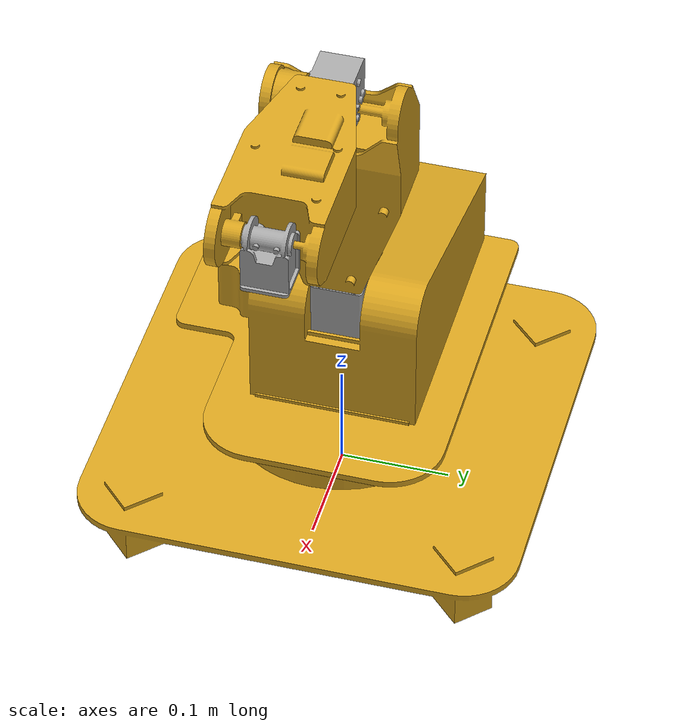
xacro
<?xml version="1.0" ?>

<robot name="open_arms" xmlns:xacro="http://www.ros.org/wiki/xacro">
    <xacro:property name="robot_id" value="open_arms" />
    <xacro:property name="description_pkg" value="open_arms_description" />

    <!-- color definition -->
    <material name="laser_cut">
        <color rgba="0.855 0.647 0.125 1" />
    </material>
    <material name="motor">
        <color rgba="0.663 0.663 0.663 1.0" />
    </material>

    <!-- links -->
    <link name="${robot_id}_base">
        <visual>
            <origin xyz="0 0 0" rpy="0 0 0" />
            <geometry>
                <mesh filename="package://${description_pkg}/meshes/visual/base.STL" />
            </geometry>
            <material name="laser_cut" />
        </visual>
        <collision>
            <origin xyz="0 0 0" rpy="0 0 0" />
            <geometry>
                <mesh filename="package://${description_pkg}/meshes/collision/base.STL" />
            </geometry>
        </collision>
    </link>
    <link name="${robot_id}_link1">
        <visual>
            <origin xyz="0 0 0" rpy="0 0 0" />
            <geometry>
                <mesh filename="package://${description_pkg}/meshes/visual/link_1.STL" />
            </geometry>
            <material name="laser_cut" />
        </visual>
        <collision>
            <origin xyz="0 0 0" rpy="0 0 0" />
            <geometry>
                <mesh filename="package://${description_pkg}/meshes/collision/link_1.STL" />
            </geometry>
        </collision>
    </link>
    <link name="${robot_id}_link2">
        <visual>
            <origin xyz="0 0 0" rpy="0 0 0" />
            <geometry>
                <mesh filename="package://${description_pkg}/meshes/visual/link_2.STL" />
            </geometry>
            <material name="motor" />
        </visual>
        <collision>
            <origin xyz="0 0 0" rpy="0 0 0" />
            <geometry>
                <mesh filename="package://${description_pkg}/meshes/collision/link_2.STL" />
            </geometry>
        </collision>
    </link>
    <link name="${robot_id}_link3">
        <visual>
            <origin xyz="0 0 0" rpy="0 0 0" />
            <geometry>
                <mesh filename="package://${description_pkg}/meshes/visual/link_3.STL" />
            </geometry>
            <material name="laser_cut" />
        </visual>
        <collision>
            <origin xyz="0 0 0" rpy="0 0 0" />
            <geometry>
                <mesh filename="package://${description_pkg}/meshes/collision/link_3.STL" />
            </geometry>
        </collision>
    </link>
    <link name="${robot_id}_link4">
        <visual>
            <origin xyz="0 0 0" rpy="0 0 0" />
            <geometry>
                <mesh filename="package://${description_pkg}/meshes/visual/link_4.STL" />
            </geometry>
            <material name="motor" />
        </visual>
        <collision>
            <origin xyz="0 0 0" rpy="0 0 0" />
            <geometry>
                <mesh filename="package://${description_pkg}/meshes/collision/link_4.STL" />
            </geometry>
        </collision>
    </link>
    <link name="${robot_id}_link5">
        <visual>
            <origin xyz="0 0 0" rpy="0 0 0" />
            <geometry>
                <mesh filename="package://${description_pkg}/meshes/visual/link_5.STL" />
            </geometry>
            <material name="laser_cut" />
        </visual>
        <collision>
            <origin xyz="0 0 0" rpy="0 0 0" />
            <geometry>
                <mesh filename="package://${description_pkg}/meshes/collision/link_5.STL" />
            </geometry>
        </collision>
    </link>
    <link name="${robot_id}_link6">
        <visual>
            <origin xyz="0 0 0" rpy="0 0 0" />
            <geometry>
                <mesh filename="package://${description_pkg}/meshes/visual/link_6.STL" />
            </geometry>
            <material name="motor" />
        </visual>
        <collision>
            <origin xyz="0 0 0" rpy="0 0 0" />
            <geometry>
                <mesh filename="package://${description_pkg}/meshes/collision/link_6.STL" />
            </geometry>
        </collision>
    </link>
    <link name="${robot_id}_link7">
        <visual>
            <origin xyz="0 0 0" rpy="0 0 0" />
            <geometry>
                <mesh filename="package://${description_pkg}/meshes/visual/link_7.STL" />
            </geometry>
            <material name="laser_cut" />
        </visual>
        <collision>
            <origin xyz="0 0 0" rpy="0 0 0" />
            <geometry>
                <mesh filename="package://${description_pkg}/meshes/collision/link_7.STL" />
            </geometry>
        </collision>
    </link>

    <!-- joints -->
    <joint name="${robot_id}_joint1" type="revolute">
        <origin rpy="0 0 0" xyz="0 0 0.053975" />
        <parent link="${robot_id}_base" />
        <child link="${robot_id}_link1" />
        <axis xyz="0 0 1" />
        <limit effort="30" lower="-1.5708" upper="1.5708" velocity="0.2094" />
    </joint>
    <joint name="${robot_id}_joint2" type="revolute">
        <origin rpy="1.5708 0 0" xyz="0 0 0.13705" />
        <parent link="${robot_id}_link1" />
        <child link="${robot_id}_link2" />
        <axis xyz="0 0 1" />
        <limit effort="30" lower="-1.5358" upper="0" velocity="0.2094" />
    </joint>
    <joint name="${robot_id}_joint3" type="revolute">
        <origin rpy="-1.5708 0 0" xyz="0 0 0" />
        <parent link="${robot_id}_link2" />
        <child link="${robot_id}_link3" />
        <axis xyz="0 0 1" />
        <limit effort="30" lower="-3.1415" upper="3.1415" velocity="0.2094" />
    </joint>
    <joint name="${robot_id}_joint4" type="revolute">
        <origin rpy="1.5708 0 0" xyz="0.020 0 0.240" />
        <parent link="${robot_id}_link3" />
        <child link="${robot_id}_link4" />
        <axis xyz="0 0 1" />
        <limit effort="30" lower="-0.6981" upper="1.8325" velocity="0.2094" />
    </joint>
    <joint name="${robot_id}_joint5" type="revolute">
        <origin rpy="1.5708 0 1.5708" xyz="0 0.020 0" />
        <parent link="${robot_id}_link4" />
        <child link="${robot_id}_link5" />
        <axis xyz="0 0 1" />
        <limit effort="30" lower="-3.1415" upper="3.1415" velocity="0.2094" />
    </joint>
    <joint name="${robot_id}_joint6" type="revolute">
        <origin rpy="-1.5708 0 0" xyz="0 0 0.200" />
        <parent link="${robot_id}_link5" />
        <child link="${robot_id}_link6" />
        <axis xyz="0 0 1" />
        <limit effort="30" lower="0" upper="3.1415" velocity="0.2094" />
    </joint>
    <joint name="${robot_id}_joint7" type="revolute">
        <origin rpy="0 -1.5708 0" xyz="0 0 0" />
        <parent link="${robot_id}_link6" />
        <child link="${robot_id}_link7" />
        <axis xyz="0 0 1" />
        <limit effort="30" lower="-3.1415" upper="3.1415" velocity="0.2094" />
    </joint>
</robot>
